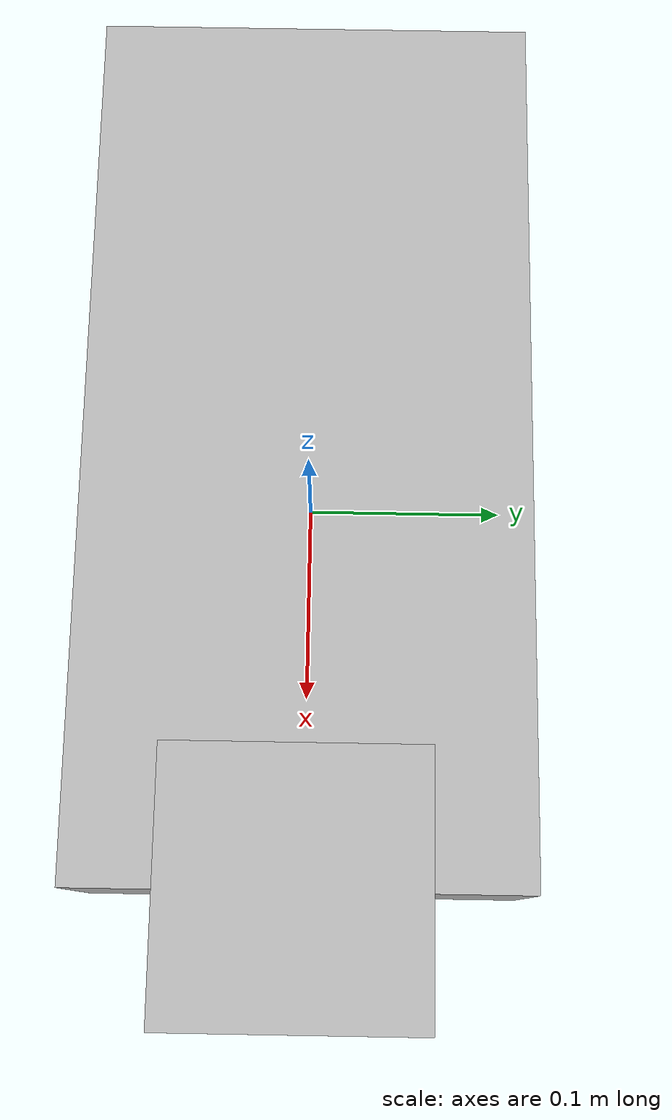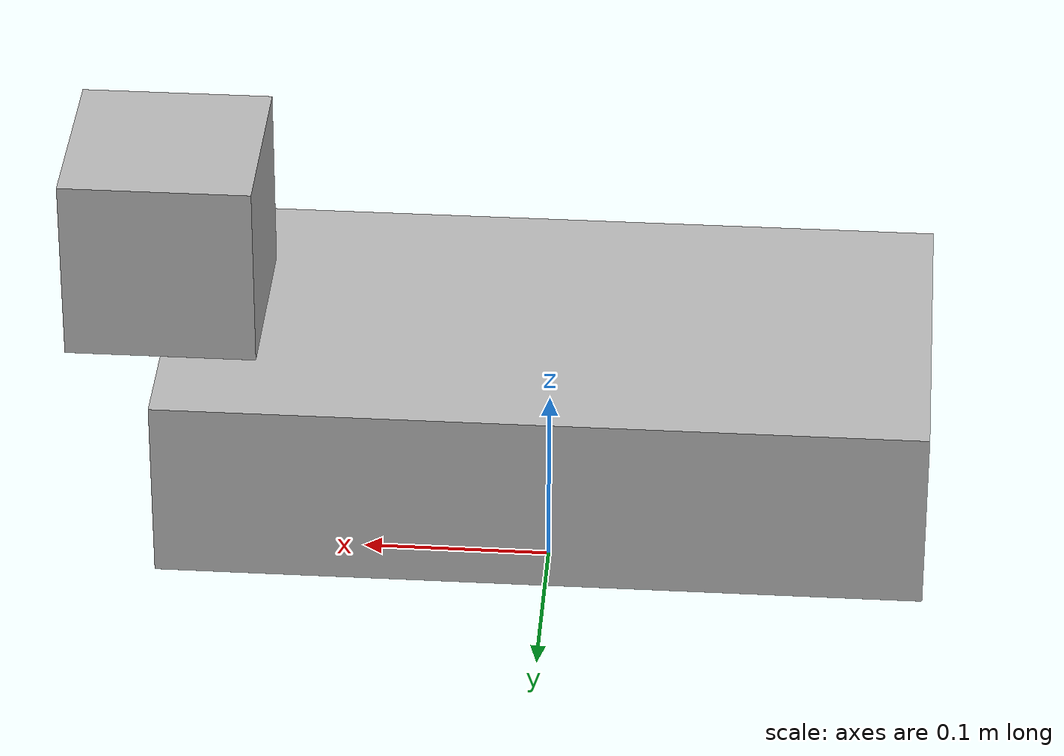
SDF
<?xml version='1.0'?>
<sdf version='1.4'>
  <model name="my_robot">
    <static>true</static>
    <link name='chassis'>
      <pose>0 0 .1 0 0 0</pose>

      <collision name='collision'>
          <geometry>
          <box>
              <size>.4 .2 .1</size>
          </box>
          </geometry>
      </collision>

      <visual name='visual'>
          <geometry>
          <box>
              <size>.4 .2 .1</size>
          </box>
          </geometry>
      </visual>
    </link>

    <link name='camera_sensor_link'>
      <pose>0.2 0 0.2 0 0 0</pose>
      <sensor type="camera" name="camera">
        <update_rate>30.0</update_rate>
        <alwaysOn>1</alwaysOn>

        <camera name="__default__">
          <horizontal_fov>1.3962634</horizontal_fov>
          <image>
            <width>800</width>
            <height>800</height>
            <format>R8G8B8</format>
          </image>
          <clip>
            <near>0.02</near>
            <far>3000</far>
          </clip>
        </camera>

        <plugin name="camera_controller" filename="libgazebo_ros_camera.so">
          <alwaysOn>1</alwaysOn>
          <updateRate>0.0</updateRate>
          <cameraName>inspector_robot/camera</cameraName>
          <imageTopicName>image_raw</imageTopicName>
          <cameraInfoTopicName>camera_info</cameraInfoTopicName>
          <frameName>camera_link</frameName>
          <hackBaseline>0.07</hackBaseline>
          <distortionK1>0.0</distortionK1>
          <distortionK2>0.0</distortionK2>
          <distortionK3>0.0</distortionK3>
          <distortionT1>0.0</distortionT1>
          <distortionT2>0.0</distortionT2>
        </plugin>
      </sensor>
    </link>

    <include>
      <uri>model://camera</uri>
      <pose>0.2 0 0.2 0 0 0</pose>
    </include>
    <joint name="camera_joint" type="fixed">
      <child>camera::link</child>
      <parent>chassis</parent>
    </joint>
    <joint name="camera_sensor_joint" type="fixed">
      <child>camera_sensor_link</child>
      <parent>camera::link</parent>
    </joint>

  </model>
</sdf>

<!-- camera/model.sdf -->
<sdf version="1.5">
  <model name="camera">
    <pose>0 0 0.05 0 0 0</pose>
    <link name="link">
      <inertial>
        <mass>0.1</mass>
        <inertia>
          <ixx>0.000166667</ixx>
          <iyy>0.000166667</iyy>
          <izz>0.000166667</izz>
        </inertia>
      </inertial>
      <collision name="collision">
        <geometry>
          <box>
            <size>0.1 0.1 0.1</size>
          </box>
        </geometry>
      </collision>
      <visual name="visual">
        <geometry>
          <box>
            <size>0.1 0.1 0.1</size>
          </box>
        </geometry>
      </visual>
      <sensor name="camera" type="camera">
        <camera>
          <horizontal_fov>1.047</horizontal_fov>
          <image>
            <width>320</width>
            <height>240</height>
          </image>
          <clip>
            <near>0.1</near>
            <far>100</far>
          </clip>
        </camera>
        <always_on>1</always_on>
        <update_rate>30</update_rate>
        <visualize>true</visualize>
      </sensor>
    </link>
  </model>
</sdf>
